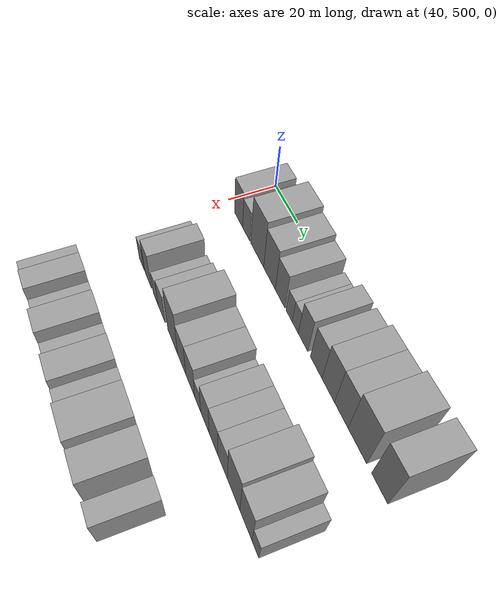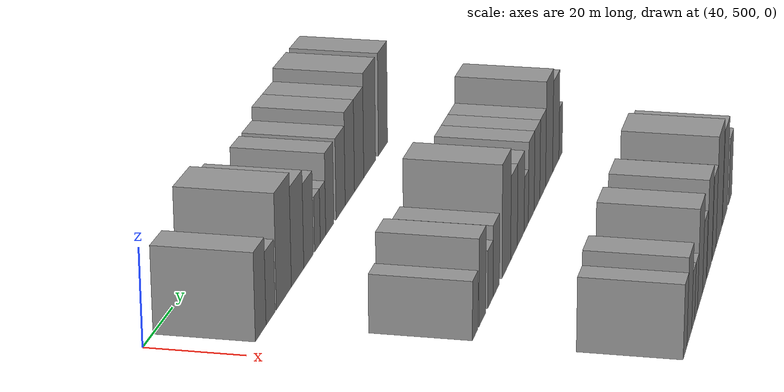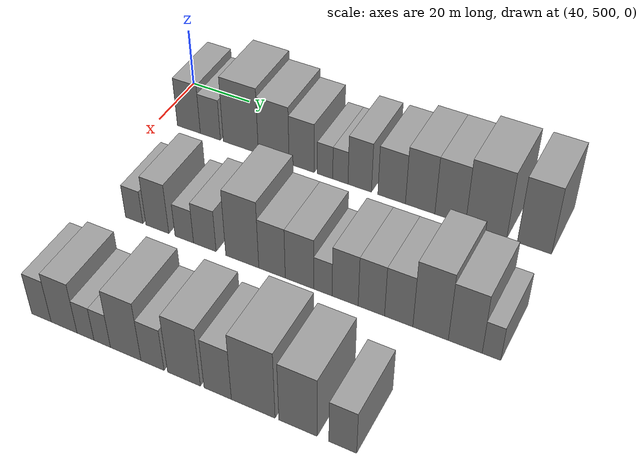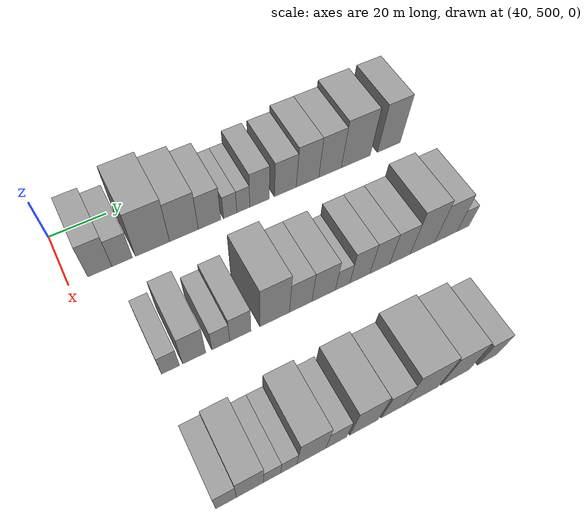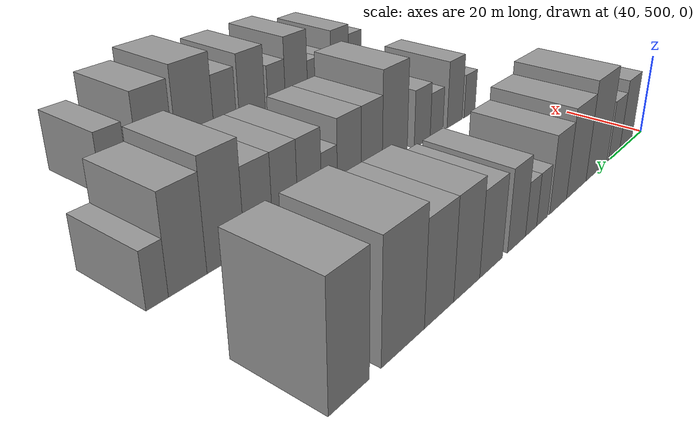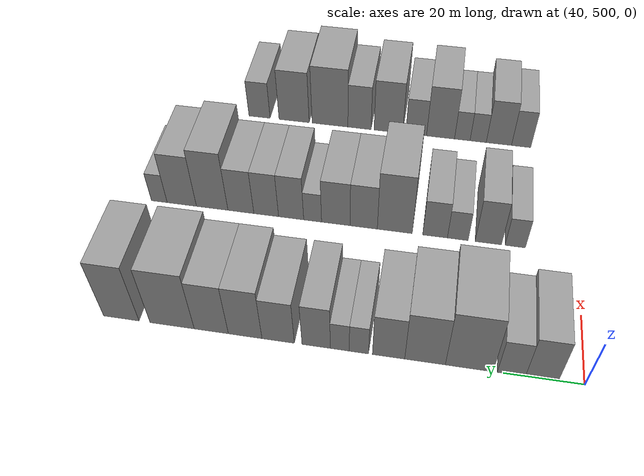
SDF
<sdf version="1.6">
 <world name="default">
  <model name="building_121">
   <static>1</static>
   <pose>50.0000 510.4955 0 0.000000 0.000000 0.000000</pose>
   <link name="link">
    <pose>0 0 9.00 0 0 0</pose>
    <collision name="collision"><geometry><box><size>20.0000 8.0716 18.0000</size></box></geometry></collision>
    <visual name="visual">
     <cast_shadows>0</cast_shadows>
     <geometry><box><size>20.0000 8.0716 18.0000</size></box></geometry>
     <material>
      <script>
       <uri>model://grey_wall/materials/scripts</uri>
       <uri>model://grey_wall/materials/textures</uri>
       <name>vrc/grey_wall</name>
      </script>
     </material>
    </visual>
   </link>
  </model>
  <model name="building_122">
   <static>1</static>
   <pose>50.0000 518.0108 0 0.000000 0.000000 0.000000</pose>
   <link name="link">
    <pose>0 0 7.50 0 0 0</pose>
    <collision name="collision"><geometry><box><size>20.0000 6.9590 15.0000</size></box></geometry></collision>
    <visual name="visual">
     <cast_shadows>0</cast_shadows>
     <geometry><box><size>20.0000 6.9590 15.0000</size></box></geometry>
     <material>
      <script>
       <uri>model://grey_wall/materials/scripts</uri>
       <uri>model://grey_wall/materials/textures</uri>
       <name>vrc/grey_wall</name>
      </script>
     </material>
    </visual>
   </link>
  </model>
  <model name="building_123">
   <static>1</static>
   <pose>50.0000 528.4596 0 0.000000 0.000000 0.000000</pose>
   <link name="link">
    <pose>0 0 12.00 0 0 0</pose>
    <collision name="collision"><geometry><box><size>20.0000 11.9385 24.0000</size></box></geometry></collision>
    <visual name="visual">
     <cast_shadows>0</cast_shadows>
     <geometry><box><size>20.0000 11.9385 24.0000</size></box></geometry>
     <material>
      <script>
       <uri>model://grey_wall/materials/scripts</uri>
       <uri>model://grey_wall/materials/textures</uri>
       <name>vrc/grey_wall</name>
      </script>
     </material>
    </visual>
   </link>
  </model>
  <model name="building_124">
   <static>1</static>
   <pose>50.0000 539.5472 0 0.000000 0.000000 0.000000</pose>
   <link name="link">
    <pose>0 0 10.50 0 0 0</pose>
    <collision name="collision"><geometry><box><size>20.0000 10.2366 21.0000</size></box></geometry></collision>
    <visual name="visual">
     <cast_shadows>0</cast_shadows>
     <geometry><box><size>20.0000 10.2366 21.0000</size></box></geometry>
     <material>
      <script>
       <uri>model://grey_wall/materials/scripts</uri>
       <uri>model://grey_wall/materials/textures</uri>
       <name>vrc/grey_wall</name>
      </script>
     </material>
    </visual>
   </link>
  </model>
  <model name="building_125">
   <static>1</static>
   <pose>50.0000 548.7740 0 0.000000 0.000000 0.000000</pose>
   <link name="link">
    <pose>0 0 9.00 0 0 0</pose>
    <collision name="collision"><geometry><box><size>20.0000 8.2170 18.0000</size></box></geometry></collision>
    <visual name="visual">
     <cast_shadows>0</cast_shadows>
     <geometry><box><size>20.0000 8.2170 18.0000</size></box></geometry>
     <material>
      <script>
       <uri>model://grey_wall/materials/scripts</uri>
       <uri>model://grey_wall/materials/textures</uri>
       <name>vrc/grey_wall</name>
      </script>
     </material>
    </visual>
   </link>
  </model>
  <model name="building_126">
   <static>1</static>
   <pose>50.0000 556.3509 0 0.000000 0.000000 0.000000</pose>
   <link name="link">
    <pose>0 0 6.00 0 0 0</pose>
    <collision name="collision"><geometry><box><size>20.0000 4.9368 12.0000</size></box></geometry></collision>
    <visual name="visual">
     <cast_shadows>0</cast_shadows>
     <geometry><box><size>20.0000 4.9368 12.0000</size></box></geometry>
     <material>
      <script>
       <uri>model://grey_wall/materials/scripts</uri>
       <uri>model://grey_wall/materials/textures</uri>
       <name>vrc/grey_wall</name>
      </script>
     </material>
    </visual>
   </link>
  </model>
  <model name="building_127">
   <static>1</static>
   <pose>50.0000 561.2526 0 0.000000 0.000000 0.000000</pose>
   <link name="link">
    <pose>0 0 6.00 0 0 0</pose>
    <collision name="collision"><geometry><box><size>20.0000 4.8665 12.0000</size></box></geometry></collision>
    <visual name="visual">
     <cast_shadows>0</cast_shadows>
     <geometry><box><size>20.0000 4.8665 12.0000</size></box></geometry>
     <material>
      <script>
       <uri>model://grey_wall/materials/scripts</uri>
       <uri>model://grey_wall/materials/textures</uri>
       <name>vrc/grey_wall</name>
      </script>
     </material>
    </visual>
   </link>
  </model>
  <model name="building_128">
   <static>1</static>
   <pose>50.0000 567.3759 0 0.000000 0.000000 0.000000</pose>
   <link name="link">
    <pose>0 0 9.00 0 0 0</pose>
    <collision name="collision"><geometry><box><size>20.0000 7.3802 18.0000</size></box></geometry></collision>
    <visual name="visual">
     <cast_shadows>0</cast_shadows>
     <geometry><box><size>20.0000 7.3802 18.0000</size></box></geometry>
     <material>
      <script>
       <uri>model://grey_wall/materials/scripts</uri>
       <uri>model://grey_wall/materials/textures</uri>
       <name>vrc/grey_wall</name>
      </script>
     </material>
    </visual>
   </link>
  </model>
  <model name="building_129">
   <static>1</static>
   <pose>50.0000 577.3105 0 0.000000 0.000000 0.000000</pose>
   <link name="link">
    <pose>0 0 9.00 0 0 0</pose>
    <collision name="collision"><geometry><box><size>20.0000 8.4890 18.0000</size></box></geometry></collision>
    <visual name="visual">
     <cast_shadows>0</cast_shadows>
     <geometry><box><size>20.0000 8.4890 18.0000</size></box></geometry>
     <material>
      <script>
       <uri>model://grey_wall/materials/scripts</uri>
       <uri>model://grey_wall/materials/textures</uri>
       <name>vrc/grey_wall</name>
      </script>
     </material>
    </visual>
   </link>
  </model>
  <model name="building_130">
   <static>1</static>
   <pose>50.0000 586.0100 0 0.000000 0.000000 0.000000</pose>
   <link name="link">
    <pose>0 0 10.50 0 0 0</pose>
    <collision name="collision"><geometry><box><size>20.0000 8.9100 21.0000</size></box></geometry></collision>
    <visual name="visual">
     <cast_shadows>0</cast_shadows>
     <geometry><box><size>20.0000 8.9100 21.0000</size></box></geometry>
     <material>
      <script>
       <uri>model://grey_wall/materials/scripts</uri>
       <uri>model://grey_wall/materials/textures</uri>
       <name>vrc/grey_wall</name>
      </script>
     </material>
    </visual>
   </link>
  </model>
  <model name="building_131">
   <static>1</static>
   <pose>50.0000 595.0280 0 0.000000 0.000000 0.000000</pose>
   <link name="link">
    <pose>0 0 10.50 0 0 0</pose>
    <collision name="collision"><geometry><box><size>20.0000 9.1259 21.0000</size></box></geometry></collision>
    <visual name="visual">
     <cast_shadows>0</cast_shadows>
     <geometry><box><size>20.0000 9.1259 21.0000</size></box></geometry>
     <material>
      <script>
       <uri>model://grey_wall/materials/scripts</uri>
       <uri>model://grey_wall/materials/textures</uri>
       <name>vrc/grey_wall</name>
      </script>
     </material>
    </visual>
   </link>
  </model>
  <model name="building_132">
   <static>1</static>
   <pose>50.0000 605.5734 0 0.000000 0.000000 0.000000</pose>
   <link name="link">
    <pose>0 0 12.00 0 0 0</pose>
    <collision name="collision"><geometry><box><size>20.0000 11.9650 24.0000</size></box></geometry></collision>
    <visual name="visual">
     <cast_shadows>0</cast_shadows>
     <geometry><box><size>20.0000 11.9650 24.0000</size></box></geometry>
     <material>
      <script>
       <uri>model://grey_wall/materials/scripts</uri>
       <uri>model://grey_wall/materials/textures</uri>
       <name>vrc/grey_wall</name>
      </script>
     </material>
    </visual>
   </link>
  </model>
  <model name="building_133">
   <static>1</static>
   <pose>50.0000 619.4041 0 0.000000 0.000000 0.000000</pose>
   <link name="link">
    <pose>0 0 12.00 0 0 0</pose>
    <collision name="collision"><geometry><box><size>20.0000 9.6963 24.0000</size></box></geometry></collision>
    <visual name="visual">
     <cast_shadows>0</cast_shadows>
     <geometry><box><size>20.0000 9.6963 24.0000</size></box></geometry>
     <material>
      <script>
       <uri>model://grey_wall/materials/scripts</uri>
       <uri>model://grey_wall/materials/textures</uri>
       <name>vrc/grey_wall</name>
      </script>
     </material>
    </visual>
   </link>
  </model>
  <model name="building_272">
   <static>1</static>
   <pose>90.0000 517.5202 0 0.000000 0.000000 0.000000</pose>
   <link name="link">
    <pose>0 0 6.00 0 0 0</pose>
    <collision name="collision"><geometry><box><size>20.0000 5.6882 12.0000</size></box></geometry></collision>
    <visual name="visual">
     <cast_shadows>0</cast_shadows>
     <geometry><box><size>20.0000 5.6882 12.0000</size></box></geometry>
     <material>
      <script>
       <uri>model://grey_wall/materials/scripts</uri>
       <uri>model://grey_wall/materials/textures</uri>
       <name>vrc/grey_wall</name>
      </script>
     </material>
    </visual>
   </link>
  </model>
  <model name="building_273">
   <static>1</static>
   <pose>90.0000 525.0788 0 0.000000 0.000000 0.000000</pose>
   <link name="link">
    <pose>0 0 9.00 0 0 0</pose>
    <collision name="collision"><geometry><box><size>20.0000 7.4290 18.0000</size></box></geometry></collision>
    <visual name="visual">
     <cast_shadows>0</cast_shadows>
     <geometry><box><size>20.0000 7.4290 18.0000</size></box></geometry>
     <material>
      <script>
       <uri>model://grey_wall/materials/scripts</uri>
       <uri>model://grey_wall/materials/textures</uri>
       <name>vrc/grey_wall</name>
      </script>
     </material>
    </visual>
   </link>
  </model>
  <model name="building_274">
   <static>1</static>
   <pose>90.0000 533.7350 0 0.000000 0.000000 0.000000</pose>
   <link name="link">
    <pose>0 0 6.00 0 0 0</pose>
    <collision name="collision"><geometry><box><size>20.0000 5.8834 12.0000</size></box></geometry></collision>
    <visual name="visual">
     <cast_shadows>0</cast_shadows>
     <geometry><box><size>20.0000 5.8834 12.0000</size></box></geometry>
     <material>
      <script>
       <uri>model://grey_wall/materials/scripts</uri>
       <uri>model://grey_wall/materials/textures</uri>
       <name>vrc/grey_wall</name>
      </script>
     </material>
    </visual>
   </link>
  </model>
  <model name="building_275">
   <static>1</static>
   <pose>90.0000 540.2137 0 0.000000 0.000000 0.000000</pose>
   <link name="link">
    <pose>0 0 7.50 0 0 0</pose>
    <collision name="collision"><geometry><box><size>20.0000 7.0739 15.0000</size></box></geometry></collision>
    <visual name="visual">
     <cast_shadows>0</cast_shadows>
     <geometry><box><size>20.0000 7.0739 15.0000</size></box></geometry>
     <material>
      <script>
       <uri>model://grey_wall/materials/scripts</uri>
       <uri>model://grey_wall/materials/textures</uri>
       <name>vrc/grey_wall</name>
      </script>
     </material>
    </visual>
   </link>
  </model>
  <model name="building_276">
   <static>1</static>
   <pose>90.0000 551.8007 0 0.000000 0.000000 0.000000</pose>
   <link name="link">
    <pose>0 0 12.00 0 0 0</pose>
    <collision name="collision"><geometry><box><size>20.0000 10.1002 24.0000</size></box></geometry></collision>
    <visual name="visual">
     <cast_shadows>0</cast_shadows>
     <geometry><box><size>20.0000 10.1002 24.0000</size></box></geometry>
     <material>
      <script>
       <uri>model://grey_wall/materials/scripts</uri>
       <uri>model://grey_wall/materials/textures</uri>
       <name>vrc/grey_wall</name>
      </script>
     </material>
    </visual>
   </link>
  </model>
  <model name="building_277">
   <static>1</static>
   <pose>90.0000 560.8175 0 0.000000 0.000000 0.000000</pose>
   <link name="link">
    <pose>0 0 9.00 0 0 0</pose>
    <collision name="collision"><geometry><box><size>20.0000 7.9333 18.0000</size></box></geometry></collision>
    <visual name="visual">
     <cast_shadows>0</cast_shadows>
     <geometry><box><size>20.0000 7.9333 18.0000</size></box></geometry>
     <material>
      <script>
       <uri>model://grey_wall/materials/scripts</uri>
       <uri>model://grey_wall/materials/textures</uri>
       <name>vrc/grey_wall</name>
      </script>
     </material>
    </visual>
   </link>
  </model>
  <model name="building_278">
   <static>1</static>
   <pose>90.0000 568.9776 0 0.000000 0.000000 0.000000</pose>
   <link name="link">
    <pose>0 0 9.00 0 0 0</pose>
    <collision name="collision"><geometry><box><size>20.0000 8.3871 18.0000</size></box></geometry></collision>
    <visual name="visual">
     <cast_shadows>0</cast_shadows>
     <geometry><box><size>20.0000 8.3871 18.0000</size></box></geometry>
     <material>
      <script>
       <uri>model://grey_wall/materials/scripts</uri>
       <uri>model://grey_wall/materials/textures</uri>
       <name>vrc/grey_wall</name>
      </script>
     </material>
    </visual>
   </link>
  </model>
  <model name="building_279">
   <static>1</static>
   <pose>90.0000 575.8162 0 0.000000 0.000000 0.000000</pose>
   <link name="link">
    <pose>0 0 6.00 0 0 0</pose>
    <collision name="collision"><geometry><box><size>20.0000 5.2901 12.0000</size></box></geometry></collision>
    <visual name="visual">
     <cast_shadows>0</cast_shadows>
     <geometry><box><size>20.0000 5.2901 12.0000</size></box></geometry>
     <material>
      <script>
       <uri>model://grey_wall/materials/scripts</uri>
       <uri>model://grey_wall/materials/textures</uri>
       <name>vrc/grey_wall</name>
      </script>
     </material>
    </visual>
   </link>
  </model>
  <model name="building_280">
   <static>1</static>
   <pose>90.0000 582.1972 0 0.000000 0.000000 0.000000</pose>
   <link name="link">
    <pose>0 0 9.00 0 0 0</pose>
    <collision name="collision"><geometry><box><size>20.0000 7.4720 18.0000</size></box></geometry></collision>
    <visual name="visual">
     <cast_shadows>0</cast_shadows>
     <geometry><box><size>20.0000 7.4720 18.0000</size></box></geometry>
     <material>
      <script>
       <uri>model://grey_wall/materials/scripts</uri>
       <uri>model://grey_wall/materials/textures</uri>
       <name>vrc/grey_wall</name>
      </script>
     </material>
    </visual>
   </link>
  </model>
  <model name="building_281">
   <static>1</static>
   <pose>90.0000 589.6375 0 0.000000 0.000000 0.000000</pose>
   <link name="link">
    <pose>0 0 9.00 0 0 0</pose>
    <collision name="collision"><geometry><box><size>20.0000 7.4086 18.0000</size></box></geometry></collision>
    <visual name="visual">
     <cast_shadows>0</cast_shadows>
     <geometry><box><size>20.0000 7.4086 18.0000</size></box></geometry>
     <material>
      <script>
       <uri>model://grey_wall/materials/scripts</uri>
       <uri>model://grey_wall/materials/textures</uri>
       <name>vrc/grey_wall</name>
      </script>
     </material>
    </visual>
   </link>
  </model>
  <model name="building_282">
   <static>1</static>
   <pose>90.0000 597.2468 0 0.000000 0.000000 0.000000</pose>
   <link name="link">
    <pose>0 0 9.00 0 0 0</pose>
    <collision name="collision"><geometry><box><size>20.0000 7.8099 18.0000</size></box></geometry></collision>
    <visual name="visual">
     <cast_shadows>0</cast_shadows>
     <geometry><box><size>20.0000 7.8099 18.0000</size></box></geometry>
     <material>
      <script>
       <uri>model://grey_wall/materials/scripts</uri>
       <uri>model://grey_wall/materials/textures</uri>
       <name>vrc/grey_wall</name>
      </script>
     </material>
    </visual>
   </link>
  </model>
  <model name="building_283">
   <static>1</static>
   <pose>90.0000 605.9520 0 0.000000 0.000000 0.000000</pose>
   <link name="link">
    <pose>0 0 12.00 0 0 0</pose>
    <collision name="collision"><geometry><box><size>20.0000 9.6005 24.0000</size></box></geometry></collision>
    <visual name="visual">
     <cast_shadows>0</cast_shadows>
     <geometry><box><size>20.0000 9.6005 24.0000</size></box></geometry>
     <material>
      <script>
       <uri>model://grey_wall/materials/scripts</uri>
       <uri>model://grey_wall/materials/textures</uri>
       <name>vrc/grey_wall</name>
      </script>
     </material>
    </visual>
   </link>
  </model>
  <model name="building_284">
   <static>1</static>
   <pose>90.0000 615.2325 0 0.000000 0.000000 0.000000</pose>
   <link name="link">
    <pose>0 0 10.50 0 0 0</pose>
    <collision name="collision"><geometry><box><size>20.0000 8.9605 21.0000</size></box></geometry></collision>
    <visual name="visual">
     <cast_shadows>0</cast_shadows>
     <geometry><box><size>20.0000 8.9605 21.0000</size></box></geometry>
     <material>
      <script>
       <uri>model://grey_wall/materials/scripts</uri>
       <uri>model://grey_wall/materials/textures</uri>
       <name>vrc/grey_wall</name>
      </script>
     </material>
    </visual>
   </link>
  </model>
  <model name="building_285">
   <static>1</static>
   <pose>90.0000 622.1455 0 0.000000 0.000000 0.000000</pose>
   <link name="link">
    <pose>0 0 6.00 0 0 0</pose>
    <collision name="collision"><geometry><box><size>20.0000 4.8655 12.0000</size></box></geometry></collision>
    <visual name="visual">
     <cast_shadows>0</cast_shadows>
     <geometry><box><size>20.0000 4.8655 12.0000</size></box></geometry>
     <material>
      <script>
       <uri>model://grey_wall/materials/scripts</uri>
       <uri>model://grey_wall/materials/textures</uri>
       <name>vrc/grey_wall</name>
      </script>
     </material>
    </visual>
   </link>
  </model>
  <model name="building_402">
   <static>1</static>
   <pose>130.0000 516.1237 0 0.000000 0.000000 0.000000</pose>
   <link name="link">
    <pose>0 0 7.50 0 0 0</pose>
    <collision name="collision"><geometry><box><size>20.0000 6.0360 15.0000</size></box></geometry></collision>
    <visual name="visual">
     <cast_shadows>0</cast_shadows>
     <geometry><box><size>20.0000 6.0360 15.0000</size></box></geometry>
     <material>
      <script>
       <uri>model://grey_wall/materials/scripts</uri>
       <uri>model://grey_wall/materials/textures</uri>
       <name>vrc/grey_wall</name>
      </script>
     </material>
    </visual>
   </link>
  </model>
  <model name="building_403">
   <static>1</static>
   <pose>130.0000 523.1226 0 0.000000 0.000000 0.000000</pose>
   <link name="link">
    <pose>0 0 9.00 0 0 0</pose>
    <collision name="collision"><geometry><box><size>20.0000 7.9618 18.0000</size></box></geometry></collision>
    <visual name="visual">
     <cast_shadows>0</cast_shadows>
     <geometry><box><size>20.0000 7.9618 18.0000</size></box></geometry>
     <material>
      <script>
       <uri>model://grey_wall/materials/scripts</uri>
       <uri>model://grey_wall/materials/textures</uri>
       <name>vrc/grey_wall</name>
      </script>
     </material>
    </visual>
   </link>
  </model>
  <model name="building_404">
   <static>1</static>
   <pose>130.0000 529.6719 0 0.000000 0.000000 0.000000</pose>
   <link name="link">
    <pose>0 0 6.00 0 0 0</pose>
    <collision name="collision"><geometry><box><size>20.0000 5.1367 12.0000</size></box></geometry></collision>
    <visual name="visual">
     <cast_shadows>0</cast_shadows>
     <geometry><box><size>20.0000 5.1367 12.0000</size></box></geometry>
     <material>
      <script>
       <uri>model://grey_wall/materials/scripts</uri>
       <uri>model://grey_wall/materials/textures</uri>
       <name>vrc/grey_wall</name>
      </script>
     </material>
    </visual>
   </link>
  </model>
  <model name="building_405">
   <static>1</static>
   <pose>130.0000 534.7090 0 0.000000 0.000000 0.000000</pose>
   <link name="link">
    <pose>0 0 6.00 0 0 0</pose>
    <collision name="collision"><geometry><box><size>20.0000 4.9374 12.0000</size></box></geometry></collision>
    <visual name="visual">
     <cast_shadows>0</cast_shadows>
     <geometry><box><size>20.0000 4.9374 12.0000</size></box></geometry>
     <material>
      <script>
       <uri>model://grey_wall/materials/scripts</uri>
       <uri>model://grey_wall/materials/textures</uri>
       <name>vrc/grey_wall</name>
      </script>
     </material>
    </visual>
   </link>
  </model>
  <model name="building_406">
   <static>1</static>
   <pose>130.0000 541.6652 0 0.000000 0.000000 0.000000</pose>
   <link name="link">
    <pose>0 0 10.50 0 0 0</pose>
    <collision name="collision"><geometry><box><size>20.0000 8.9751 21.0000</size></box></geometry></collision>
    <visual name="visual">
     <cast_shadows>0</cast_shadows>
     <geometry><box><size>20.0000 8.9751 21.0000</size></box></geometry>
     <material>
      <script>
       <uri>model://grey_wall/materials/scripts</uri>
       <uri>model://grey_wall/materials/textures</uri>
       <name>vrc/grey_wall</name>
      </script>
     </material>
    </visual>
   </link>
  </model>
  <model name="building_407">
   <static>1</static>
   <pose>130.0000 549.4956 0 0.000000 0.000000 0.000000</pose>
   <link name="link">
    <pose>0 0 7.50 0 0 0</pose>
    <collision name="collision"><geometry><box><size>20.0000 6.6856 15.0000</size></box></geometry></collision>
    <visual name="visual">
     <cast_shadows>0</cast_shadows>
     <geometry><box><size>20.0000 6.6856 15.0000</size></box></geometry>
     <material>
      <script>
       <uri>model://grey_wall/materials/scripts</uri>
       <uri>model://grey_wall/materials/textures</uri>
       <name>vrc/grey_wall</name>
      </script>
     </material>
    </visual>
   </link>
  </model>
  <model name="building_408">
   <static>1</static>
   <pose>130.0000 558.4822 0 0.000000 0.000000 0.000000</pose>
   <link name="link">
    <pose>0 0 10.50 0 0 0</pose>
    <collision name="collision"><geometry><box><size>20.0000 9.2876 21.0000</size></box></geometry></collision>
    <visual name="visual">
     <cast_shadows>0</cast_shadows>
     <geometry><box><size>20.0000 9.2876 21.0000</size></box></geometry>
     <material>
      <script>
       <uri>model://grey_wall/materials/scripts</uri>
       <uri>model://grey_wall/materials/textures</uri>
       <name>vrc/grey_wall</name>
      </script>
     </material>
    </visual>
   </link>
  </model>
  <model name="building_409">
   <static>1</static>
   <pose>130.0000 567.9056 0 0.000000 0.000000 0.000000</pose>
   <link name="link">
    <pose>0 0 9.00 0 0 0</pose>
    <collision name="collision"><geometry><box><size>20.0000 7.5592 18.0000</size></box></geometry></collision>
    <visual name="visual">
     <cast_shadows>0</cast_shadows>
     <geometry><box><size>20.0000 7.5592 18.0000</size></box></geometry>
     <material>
      <script>
       <uri>model://grey_wall/materials/scripts</uri>
       <uri>model://grey_wall/materials/textures</uri>
       <name>vrc/grey_wall</name>
      </script>
     </material>
    </visual>
   </link>
  </model>
  <model name="building_410">
   <static>1</static>
   <pose>130.0000 577.5824 0 0.000000 0.000000 0.000000</pose>
   <link name="link">
    <pose>0 0 12.00 0 0 0</pose>
    <collision name="collision"><geometry><box><size>20.0000 11.7943 24.0000</size></box></geometry></collision>
    <visual name="visual">
     <cast_shadows>0</cast_shadows>
     <geometry><box><size>20.0000 11.7943 24.0000</size></box></geometry>
     <material>
      <script>
       <uri>model://grey_wall/materials/scripts</uri>
       <uri>model://grey_wall/materials/textures</uri>
       <name>vrc/grey_wall</name>
      </script>
     </material>
    </visual>
   </link>
  </model>
  <model name="building_411">
   <static>1</static>
   <pose>130.0000 589.4962 0 0.000000 0.000000 0.000000</pose>
   <link name="link">
    <pose>0 0 10.50 0 0 0</pose>
    <collision name="collision"><geometry><box><size>20.0000 10.0333 21.0000</size></box></geometry></collision>
    <visual name="visual">
     <cast_shadows>0</cast_shadows>
     <geometry><box><size>20.0000 10.0333 21.0000</size></box></geometry>
     <material>
      <script>
       <uri>model://grey_wall/materials/scripts</uri>
       <uri>model://grey_wall/materials/textures</uri>
       <name>vrc/grey_wall</name>
      </script>
     </material>
    </visual>
   </link>
  </model>
  <model name="building_412">
   <static>1</static>
   <pose>130.0000 601.0543 0 0.000000 0.000000 0.000000</pose>
   <link name="link">
    <pose>0 0 7.50 0 0 0</pose>
    <collision name="collision"><geometry><box><size>20.0000 7.0829 15.0000</size></box></geometry></collision>
    <visual name="visual">
     <cast_shadows>0</cast_shadows>
     <geometry><box><size>20.0000 7.0829 15.0000</size></box></geometry>
     <material>
      <script>
       <uri>model://grey_wall/materials/scripts</uri>
       <uri>model://grey_wall/materials/textures</uri>
       <name>vrc/grey_wall</name>
      </script>
     </material>
    </visual>
   </link>
  </model>
 </world>
</sdf>
